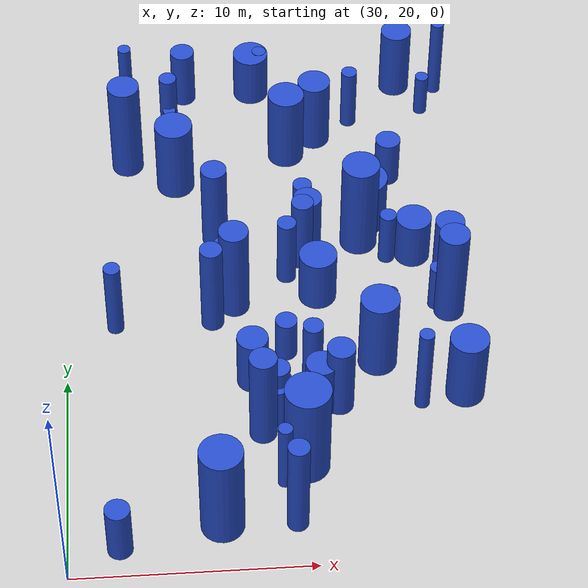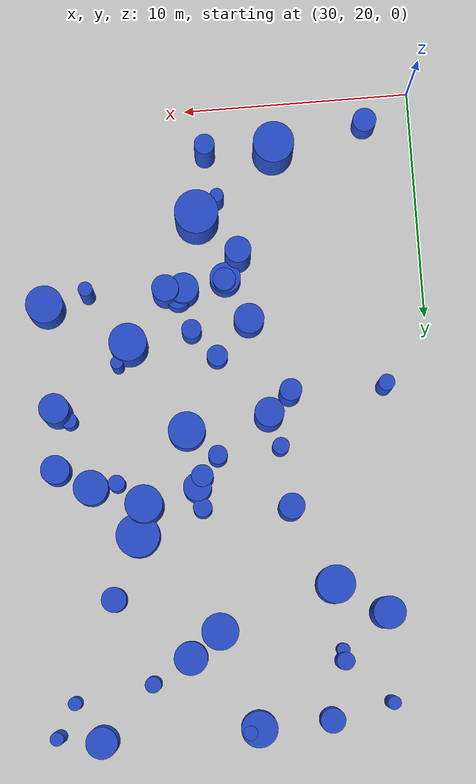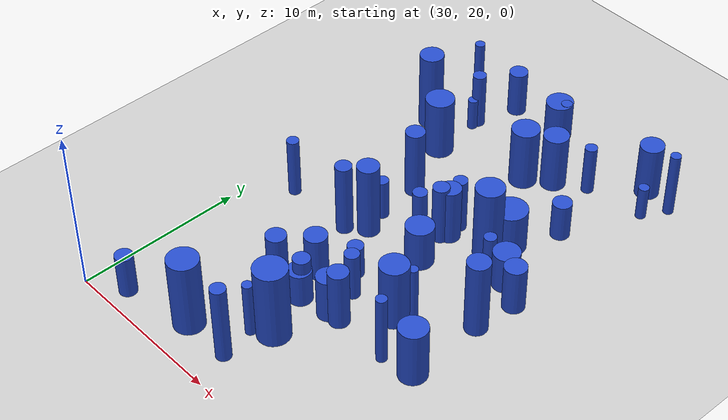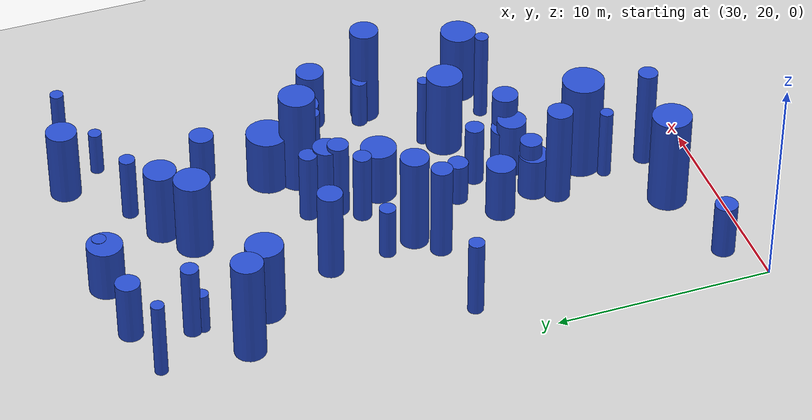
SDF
<sdf version="1.6">
 <world name="default">
  <model name="ground_plane">
   <static>1</static>
   <link name="link">
    <collision name="collision">
     <geometry><plane><normal>0 0 1</normal><size>100 100</size></plane></geometry>
     <surface><friction><ode><mu>100</mu><mu2>50</mu2></ode></friction></surface>
    </collision>
    <visual name="visual">
     <cast_shadows>0</cast_shadows>
     <geometry><plane><normal>0 0 1</normal><size>100 100</size></plane></geometry>
     <material>
      <script><uri>file://media/materials/scripts/gazebo.material</uri><name>Gazebo/Grey</name></script>
     </material>
    </visual>
   </link>
  </model>
  <model name="1">
   <static>0</static>
   <link name="link">
    <inertial>
     <mass>2</mass>
     <inertia><ixx>1.29937</ixx><ixy>0</ixy><ixz>0</ixz><iyy>1.29937</iyy><iyz>0</iyz><izz>0.270526</izz></inertia>
    </inertial>
    <collision name="collision">
     <geometry><cylinder><length>2.64284</length><radius>0.520121</radius></cylinder></geometry>
     <surface><contact><collide_without_contact>1</collide_without_contact></contact></surface>
    </collision>
    <visual name="visual">
     <geometry><cylinder><length>2.64284</length><radius>0.520121</radius></cylinder></geometry>
     <material>
      <script><uri>file://media/materials/scripts/gazebo.material</uri><name>Gazebo/Blue</name></script>
     </material>
    </visual>
    <gravity>0</gravity>
   </link>
   <pose>32.0876 21.3109 1.32142 0 -0 0</pose>
  </model>
  <model name="5">
   <static>0</static>
   <link name="link">
    <inertial>
     <mass>2</mass>
     <inertia><ixx>1.28365</ixx><ixy>0</ixy><ixz>0</ixz><iyy>1.28365</iyy><iyz>0</iyz><izz>0.136114</izz></inertia>
    </inertial>
    <collision name="collision">
     <geometry><cylinder><length>2.70066</length><radius>0.368937</radius></cylinder></geometry>
     <surface><contact><collide_without_contact>1</collide_without_contact></contact></surface>
    </collision>
    <visual name="visual">
     <geometry><cylinder><length>2.70066</length><radius>0.368937</radius></cylinder></geometry>
     <material>
      <script><uri>file://media/materials/scripts/gazebo.material</uri><name>Gazebo/Blue</name></script>
     </material>
    </visual>
    <gravity>0</gravity>
   </link>
   <pose>44.2189 36.454 1.35033 0 -0 0</pose>
  </model>
  <model name="10">
   <static>0</static>
   <link name="link">
    <inertial>
     <mass>2</mass>
     <inertia><ixx>1.16641</ixx><ixy>0</ixy><ixz>0</ixz><iyy>1.16641</iyy><iyz>0</iyz><izz>0.142317</izz></inertia>
    </inertial>
    <collision name="collision">
     <geometry><cylinder><length>2.56349</length><radius>0.37725</radius></cylinder></geometry>
     <surface><contact><collide_without_contact>1</collide_without_contact></contact></surface>
    </collision>
    <visual name="visual">
     <geometry><cylinder><length>2.56349</length><radius>0.37725</radius></cylinder></geometry>
     <material>
      <script><uri>file://media/materials/scripts/gazebo.material</uri><name>Gazebo/Blue</name></script>
     </material>
    </visual>
    <gravity>0</gravity>
   </link>
   <pose>36.8922 35.3674 1.28175 0 -0 0</pose>
  </model>
  <model name="12">
   <static>0</static>
   <link name="link">
    <inertial>
     <mass>2</mass>
     <inertia><ixx>2.99946</ixx><ixy>0</ixy><ixz>0</ixz><iyy>2.99946</iyy><iyz>0</iyz><izz>0.69692</izz></inertia>
    </inertial>
    <collision name="collision">
     <geometry><cylinder><length>3.98823</length><radius>0.834817</radius></cylinder></geometry>
     <surface><contact><collide_without_contact>1</collide_without_contact></contact></surface>
    </collision>
    <visual name="visual">
     <geometry><cylinder><length>3.98823</length><radius>0.834817</radius></cylinder></geometry>
     <material>
      <script><uri>file://media/materials/scripts/gazebo.material</uri><name>Gazebo/Blue</name></script>
     </material>
    </visual>
    <gravity>0</gravity>
   </link>
   <pose>43.2297 30.4 1.99412 0 -0 0</pose>
  </model>
  <model name="14">
   <static>0</static>
   <link name="link">
    <inertial>
     <mass>2</mass>
     <inertia>
      <ixx>2.88721</ixx>
      <ixy>0</ixy>
      <ixz>0</ixz>
      <iyy>2.88721</iyy>
      <iyz>0</iyz>
      <izz>0.0931527</izz>
     </inertia>
    </inertial>
    <collision name="collision">
     <geometry><cylinder><length>4.12841</length><radius>0.305209</radius></cylinder></geometry>
     <surface><contact><collide_without_contact>1</collide_without_contact></contact></surface>
    </collision>
    <visual name="visual">
     <geometry><cylinder><length>4.12841</length><radius>0.305209</radius></cylinder></geometry>
     <material>
      <script><uri>file://media/materials/scripts/gazebo.material</uri><name>Gazebo/Blue</name></script>
     </material>
    </visual>
    <gravity>0</gravity>
   </link>
   <pose>47.5968 47.3639 2.06421 0 -0 0</pose>
  </model>
  <model name="17">
   <static>0</static>
   <link name="link">
    <inertial>
     <mass>2</mass>
     <inertia><ixx>2.21319</ixx><ixy>0</ixy><ixz>0</ixz><iyy>2.21319</iyy><iyz>0</iyz><izz>0.160005</izz></inertia>
    </inertial>
    <collision name="collision">
     <geometry><cylinder><length>3.57759</length><radius>0.400007</radius></cylinder></geometry>
     <surface><contact><collide_without_contact>1</collide_without_contact></contact></surface>
    </collision>
    <visual name="visual">
     <geometry><cylinder><length>3.57759</length><radius>0.400007</radius></cylinder></geometry>
     <material>
      <script><uri>file://media/materials/scripts/gazebo.material</uri><name>Gazebo/Blue</name></script>
     </material>
    </visual>
    <gravity>0</gravity>
   </link>
   <pose>34.8299 44.982 1.78879 0 -0 0</pose>
  </model>
  <model name="19">
   <static>0</static>
   <link name="link">
    <inertial>
     <mass>2</mass>
     <inertia><ixx>1.64625</ixx><ixy>0</ixy><ixz>0</ixz><iyy>1.64625</iyy><iyz>0</iyz><izz>0.417403</izz></inertia>
    </inertial>
    <collision name="collision">
     <geometry><cylinder><length>2.93689</length><radius>0.646067</radius></cylinder></geometry>
     <surface><contact><collide_without_contact>1</collide_without_contact></contact></surface>
    </collision>
    <visual name="visual">
     <geometry><cylinder><length>2.93689</length><radius>0.646067</radius></cylinder></geometry>
     <material>
      <script><uri>file://media/materials/scripts/gazebo.material</uri><name>Gazebo/Blue</name></script>
     </material>
    </visual>
    <gravity>0</gravity>
   </link>
   <pose>46.8519 35.6651 1.46844 0 -0 0</pose>
  </model>
  <model name="24">
   <static>0</static>
   <link name="link">
    <inertial>
     <mass>2</mass>
     <inertia><ixx>1.49406</ixx><ixy>0</ixy><ixz>0</ixz><iyy>1.49406</iyy><iyz>0</iyz><izz>0.447724</izz></inertia>
    </inertial>
    <collision name="collision">
     <geometry><cylinder><length>2.76065</length><radius>0.669122</radius></cylinder></geometry>
     <surface><contact><collide_without_contact>1</collide_without_contact></contact></surface>
    </collision>
    <visual name="visual">
     <geometry><cylinder><length>2.76065</length><radius>0.669122</radius></cylinder></geometry>
     <material>
      <script><uri>file://media/materials/scripts/gazebo.material</uri><name>Gazebo/Blue</name></script>
     </material>
    </visual>
    <gravity>0</gravity>
   </link>
   <pose>37.853 29.6773 1.38032 0 -0 0</pose>
  </model>
  <model name="27">
   <static>0</static>
   <link name="link">
    <inertial>
     <mass>2</mass>
     <inertia>
      <ixx>2.06442</ixx>
      <ixy>0</ixy>
      <ixz>0</ixz>
      <iyy>2.06442</iyy>
      <iyz>0</iyz>
      <izz>0.0914529</izz>
     </inertia>
    </inertial>
    <collision name="collision">
     <geometry><cylinder><length>3.48025</length><radius>0.302412</radius></cylinder></geometry>
     <surface><contact><collide_without_contact>1</collide_without_contact></contact></surface>
    </collision>
    <visual name="visual">
     <geometry><cylinder><length>3.48025</length><radius>0.302412</radius></cylinder></geometry>
     <material>
      <script><uri>file://media/materials/scripts/gazebo.material</uri><name>Gazebo/Blue</name></script>
     </material>
    </visual>
    <gravity>0</gravity>
   </link>
   <pose>38.8581 24.2263 1.74013 0 -0 0</pose>
  </model>
  <model name="29">
   <static>0</static>
   <link name="link">
    <inertial>
     <mass>2</mass>
     <inertia>
      <ixx>0.983996</ixx>
      <ixy>0</ixy>
      <ixz>0</ixz>
      <iyy>0.983996</iyy>
      <iyz>0</iyz>
      <izz>0.470048</izz>
     </inertia>
    </inertial>
    <collision name="collision">
     <geometry><cylinder><length>2.11987</length><radius>0.685601</radius></cylinder></geometry>
     <surface><contact><collide_without_contact>1</collide_without_contact></contact></surface>
    </collision>
    <visual name="visual">
     <geometry><cylinder><length>2.11987</length><radius>0.685601</radius></cylinder></geometry>
     <material>
      <script><uri>file://media/materials/scripts/gazebo.material</uri><name>Gazebo/Blue</name></script>
     </material>
    </visual>
    <gravity>0</gravity>
   </link>
   <pose>38.7542 27.7533 1.05993 0 -0 0</pose>
  </model>
  <model name="31">
   <static>0</static>
   <link name="link">
    <inertial>
     <mass>2</mass>
     <inertia><ixx>2.45644</ixx><ixy>0</ixy><ixz>0</ixz><iyy>2.45644</iyy><iyz>0</iyz><izz>0.235516</izz></inertia>
    </inertial>
    <collision name="collision">
     <geometry><cylinder><length>3.74595</length><radius>0.4853</radius></cylinder></geometry>
     <surface><contact><collide_without_contact>1</collide_without_contact></contact></surface>
    </collision>
    <visual name="visual">
     <geometry><cylinder><length>3.74595</length><radius>0.4853</radius></cylinder></geometry>
     <material>
      <script><uri>file://media/materials/scripts/gazebo.material</uri><name>Gazebo/Blue</name></script>
     </material>
    </visual>
    <gravity>0</gravity>
   </link>
   <pose>40.4344 36.4539 1.87297 0 -0 0</pose>
  </model>
  <model name="38">
   <static>0</static>
   <link name="link">
    <inertial>
     <mass>2</mass>
     <inertia><ixx>1.50603</ixx><ixy>0</ixy><ixz>0</ixz><iyy>1.50603</iyy><iyz>0</iyz><izz>0.44841</izz></inertia>
    </inertial>
    <collision name="collision">
     <geometry><cylinder><length>2.77325</length><radius>0.669635</radius></cylinder></geometry>
     <surface><contact><collide_without_contact>1</collide_without_contact></contact></surface>
    </collision>
    <visual name="visual">
     <geometry><cylinder><length>2.77325</length><radius>0.669635</radius></cylinder></geometry>
     <material>
      <script><uri>file://media/materials/scripts/gazebo.material</uri><name>Gazebo/Blue</name></script>
     </material>
    </visual>
    <gravity>0</gravity>
   </link>
   <pose>40.6277 28.1109 1.38663 0 -0 0</pose>
  </model>
  <model name="39">
   <static>0</static>
   <link name="link">
    <inertial>
     <mass>2</mass>
     <inertia><ixx>3.67581</ixx><ixy>0</ixy><ixz>0</ixz><iyy>3.67581</iyy><iyz>0</iyz><izz>0.237626</izz></inertia>
    </inertial>
    <collision name="collision">
     <geometry><cylinder><length>4.61974</length><radius>0.487469</radius></cylinder></geometry>
     <surface><contact><collide_without_contact>1</collide_without_contact></contact></surface>
    </collision>
    <visual name="visual">
     <geometry><cylinder><length>4.61974</length><radius>0.487469</radius></cylinder></geometry>
     <material>
      <script><uri>file://media/materials/scripts/gazebo.material</uri><name>Gazebo/Blue</name></script>
     </material>
    </visual>
    <gravity>0</gravity>
   </link>
   <pose>36.3072 33.0621 2.30987 0 -0 0</pose>
  </model>
  <model name="43">
   <static>0</static>
   <link name="link">
    <inertial>
     <mass>2</mass>
     <inertia><ixx>1.55938</ixx><ixy>0</ixy><ixz>0</ixz><iyy>1.55938</iyy><iyz>0</iyz><izz>0.307875</izz></inertia>
    </inertial>
    <collision name="collision">
     <geometry><cylinder><length>2.9039</length><radius>0.554865</radius></cylinder></geometry>
     <surface><contact><collide_without_contact>1</collide_without_contact></contact></surface>
    </collision>
    <visual name="visual">
     <geometry><cylinder><length>2.9039</length><radius>0.554865</radius></cylinder></geometry>
     <material>
      <script><uri>file://media/materials/scripts/gazebo.material</uri><name>Gazebo/Blue</name></script>
     </material>
    </visual>
    <gravity>0</gravity>
   </link>
   <pose>35.5678 47.5327 1.45195 0 -0 0</pose>
  </model>
  <model name="55">
   <static>0</static>
   <link name="link">
    <inertial>
     <mass>2</mass>
     <inertia><ixx>2.46445</ixx><ixy>0</ixy><ixz>0</ixz><iyy>2.46445</iyy><iyz>0</iyz><izz>0.129583</izz></inertia>
    </inertial>
    <collision name="collision">
     <geometry><cylinder><length>3.79446</length><radius>0.359977</radius></cylinder></geometry>
     <surface><contact><collide_without_contact>1</collide_without_contact></contact></surface>
    </collision>
    <visual name="visual">
     <geometry><cylinder><length>3.79446</length><radius>0.359977</radius></cylinder></geometry>
     <material>
      <script><uri>file://media/materials/scripts/gazebo.material</uri><name>Gazebo/Blue</name></script>
     </material>
    </visual>
    <gravity>0</gravity>
   </link>
   <pose>32.0939 33.0185 1.89723 0 -0 0</pose>
  </model>
  <model name="59">
   <static>0</static>
   <link name="link">
    <inertial>
     <mass>2</mass>
     <inertia><ixx>1.53536</ixx><ixy>0</ixy><ixz>0</ixz><iyy>1.53536</iyy><iyz>0</iyz><izz>0.253607</izz></inertia>
    </inertial>
    <collision name="collision">
     <geometry><cylinder><length>2.90712</length><radius>0.503594</radius></cylinder></geometry>
     <surface><contact><collide_without_contact>1</collide_without_contact></contact></surface>
    </collision>
    <visual name="visual">
     <geometry><cylinder><length>2.90712</length><radius>0.503594</radius></cylinder></geometry>
     <material>
      <script><uri>file://media/materials/scripts/gazebo.material</uri><name>Gazebo/Blue</name></script>
     </material>
    </visual>
    <gravity>0</gravity>
   </link>
   <pose>38.8057 27.8795 1.45356 0 -0 0</pose>
  </model>
  <model name="61">
   <static>0</static>
   <link name="link">
    <inertial>
     <mass>2</mass>
     <inertia><ixx>2.0788</ixx><ixy>0</ixy><ixz>0</ixz><iyy>2.0788</iyy><iyz>0</iyz><izz>0.0753611</izz></inertia>
    </inertial>
    <collision name="collision">
     <geometry><cylinder><length>3.49953</length><radius>0.27452</radius></cylinder></geometry>
     <surface><contact><collide_without_contact>1</collide_without_contact></contact></surface>
    </collision>
    <visual name="visual">
     <geometry><cylinder><length>3.49953</length><radius>0.27452</radius></cylinder></geometry>
     <material>
      <script><uri>file://media/materials/scripts/gazebo.material</uri><name>Gazebo/Blue</name></script>
     </material>
    </visual>
    <gravity>0</gravity>
   </link>
   <pose>43.7905 31.2281 1.74976 0 -0 0</pose>
  </model>
  <model name="64">
   <static>0</static>
   <link name="link">
    <inertial>
     <mass>2</mass>
     <inertia><ixx>2.07915</ixx><ixy>0</ixy><ixz>0</ixz><iyy>2.07915</iyy><iyz>0</iyz><izz>0.175917</izz></inertia>
    </inertial>
    <collision name="collision">
     <geometry><cylinder><length>3.45646</length><radius>0.419424</radius></cylinder></geometry>
     <surface><contact><collide_without_contact>1</collide_without_contact></contact></surface>
    </collision>
    <visual name="visual">
     <geometry><cylinder><length>3.45646</length><radius>0.419424</radius></cylinder></geometry>
     <material>
      <script><uri>file://media/materials/scripts/gazebo.material</uri><name>Gazebo/Blue</name></script>
     </material>
    </visual>
    <gravity>0</gravity>
   </link>
   <pose>40.5268 37.8266 1.72823 0 -0 0</pose>
  </model>
  <model name="74">
   <static>0</static>
   <link name="link">
    <inertial>
     <mass>2</mass>
     <inertia><ixx>4.13948</ixx><ixy>0</ixy><ixz>0</ixz><iyy>4.13948</iyy><iyz>0</iyz><izz>0.198706</izz></inertia>
    </inertial>
    <collision name="collision">
     <geometry><cylinder><length>4.92349</length><radius>0.445764</radius></cylinder></geometry>
     <surface><contact><collide_without_contact>1</collide_without_contact></contact></surface>
    </collision>
    <visual name="visual">
     <geometry><cylinder><length>4.92349</length><radius>0.445764</radius></cylinder></geometry>
     <material>
      <script><uri>file://media/materials/scripts/gazebo.material</uri><name>Gazebo/Blue</name></script>
     </material>
    </visual>
    <gravity>0</gravity>
   </link>
   <pose>39.2279 22.1338 2.46174 0 -0 0</pose>
  </model>
  <model name="94">
   <static>0</static>
   <link name="link">
    <inertial>
     <mass>2</mass>
     <inertia>
      <ixx>2.38254</ixx>
      <ixy>0</ixy>
      <ixz>0</ixz>
      <iyy>2.38254</iyy>
      <iyz>0</iyz>
      <izz>0.0875542</izz>
     </inertia>
    </inertial>
    <collision name="collision">
     <geometry><cylinder><length>3.74601</length><radius>0.295896</radius></cylinder></geometry>
     <surface><contact><collide_without_contact>1</collide_without_contact></contact></surface>
    </collision>
    <visual name="visual">
     <geometry><cylinder><length>3.74601</length><radius>0.295896</radius></cylinder></geometry>
     <material>
      <script><uri>file://media/materials/scripts/gazebo.material</uri><name>Gazebo/Blue</name></script>
     </material>
    </visual>
    <gravity>0</gravity>
   </link>
   <pose>32.8739 46.9525 1.87301 0 -0 0</pose>
  </model>
  <model name="96">
   <static>0</static>
   <link name="link">
    <inertial>
     <mass>2</mass>
     <inertia><ixx>2.76974</ixx><ixy>0</ixy><ixz>0</ixz><iyy>2.76974</iyy><iyz>0</iyz><izz>0.675124</izz></inertia>
    </inertial>
    <collision name="collision">
     <geometry><cylinder><length>3.82009</length><radius>0.82166</radius></cylinder></geometry>
     <surface><contact><collide_without_contact>1</collide_without_contact></contact></surface>
    </collision>
    <visual name="visual">
     <geometry><cylinder><length>3.82009</length><radius>0.82166</radius></cylinder></geometry>
     <material>
      <script><uri>file://media/materials/scripts/gazebo.material</uri><name>Gazebo/Blue</name></script>
     </material>
    </visual>
    <gravity>0</gravity>
   </link>
   <pose>40.1807 43.2774 1.91004 0 -0 0</pose>
  </model>
  <model name="98">
   <static>0</static>
   <link name="link">
    <inertial>
     <mass>2</mass>
     <inertia><ixx>1.71522</ixx><ixy>0</ixy><ixz>0</ixz><iyy>1.71522</iyy><iyz>0</iyz><izz>0.943107</izz></inertia>
    </inertial>
    <collision name="collision">
     <geometry><cylinder><length>2.73166</length><radius>0.971137</radius></cylinder></geometry>
     <surface><contact><collide_without_contact>1</collide_without_contact></contact></surface>
    </collision>
    <visual name="visual">
     <geometry><cylinder><length>2.73166</length><radius>0.971137</radius></cylinder></geometry>
     <material>
      <script><uri>file://media/materials/scripts/gazebo.material</uri><name>Gazebo/Blue</name></script>
     </material>
    </visual>
    <gravity>0</gravity>
   </link>
   <pose>43.4595 38.8044 1.36583 0 -0 0</pose>
  </model>
  <model name="107">
   <static>0</static>
   <link name="link">
    <inertial>
     <mass>2</mass>
     <inertia><ixx>3.99071</ixx><ixy>0</ixy><ixz>0</ixz><iyy>3.99071</iyy><iyz>0</iyz><izz>0.335329</izz></inertia>
    </inertial>
    <collision name="collision">
     <geometry><cylinder><length>4.78939</length><radius>0.579076</radius></cylinder></geometry>
     <surface><contact><collide_without_contact>1</collide_without_contact></contact></surface>
    </collision>
    <visual name="visual">
     <geometry><cylinder><length>4.78939</length><radius>0.579076</radius></cylinder></geometry>
     <material>
      <script><uri>file://media/materials/scripts/gazebo.material</uri><name>Gazebo/Blue</name></script>
     </material>
    </visual>
    <gravity>0</gravity>
   </link>
   <pose>38.1291 26.8125 2.3947 0 -0 0</pose>
  </model>
  <model name="109">
   <static>0</static>
   <link name="link">
    <inertial>
     <mass>2</mass>
     <inertia><ixx>1.09775</ixx><ixy>0</ixy><ixz>0</ixz><iyy>1.09775</iyy><iyz>0</iyz><izz>0.108231</izz></inertia>
    </inertial>
    <collision name="collision">
     <geometry><cylinder><length>2.50236</length><radius>0.328985</radius></cylinder></geometry>
     <surface><contact><collide_without_contact>1</collide_without_contact></contact></surface>
    </collision>
    <visual name="visual">
     <geometry><cylinder><length>2.50236</length><radius>0.328985</radius></cylinder></geometry>
     <material>
      <script><uri>file://media/materials/scripts/gazebo.material</uri><name>Gazebo/Blue</name></script>
     </material>
    </visual>
    <gravity>0</gravity>
   </link>
   <pose>39.2089 47.8125 1.25118 0 -0 0</pose>
  </model>
  <model name="110">
   <static>0</static>
   <link name="link">
    <inertial>
     <mass>2</mass>
     <inertia><ixx>0.82904</ixx><ixy>0</ixy><ixz>0</ixz><iyy>0.82904</iyy><iyz>0</iyz><izz>0.220253</izz></inertia>
    </inertial>
    <collision name="collision">
     <geometry><cylinder><length>2.07689</length><radius>0.469311</radius></cylinder></geometry>
     <surface><contact><collide_without_contact>1</collide_without_contact></contact></surface>
    </collision>
    <visual name="visual">
     <geometry><cylinder><length>2.07689</length><radius>0.469311</radius></cylinder></geometry>
     <material>
      <script><uri>file://media/materials/scripts/gazebo.material</uri><name>Gazebo/Blue</name></script>
     </material>
    </visual>
    <gravity>0</gravity>
   </link>
   <pose>39.37 31.1547 1.03845 0 -0 0</pose>
  </model>
  <model name="112">
   <static>0</static>
   <link name="link">
    <inertial>
     <mass>2</mass>
     <inertia><ixx>3.3324</ixx><ixy>0</ixy><ixz>0</ixz><iyy>3.3324</iyy><iyz>0</iyz><izz>0.327172</izz></inertia>
    </inertial>
    <collision name="collision">
     <geometry><cylinder><length>4.36038</length><radius>0.571989</radius></cylinder></geometry>
     <surface><contact><collide_without_contact>1</collide_without_contact></contact></surface>
    </collision>
    <visual name="visual">
     <geometry><cylinder><length>4.36038</length><radius>0.571989</radius></cylinder></geometry>
     <material>
      <script><uri>file://media/materials/scripts/gazebo.material</uri><name>Gazebo/Blue</name></script>
     </material>
    </visual>
    <gravity>0</gravity>
   </link>
   <pose>36.6463 38.0929 2.18019 0 -0 0</pose>
  </model>
  <model name="114">
   <static>0</static>
   <link name="link">
    <inertial>
     <mass>2</mass>
     <inertia>
      <ixx>0.804192</ixx>
      <ixy>0</ixy>
      <ixz>0</ixz>
      <iyy>0.804192</iyy>
      <iyz>0</iyz>
      <izz>0.0938016</izz>
     </inertia>
    </inertial>
    <collision name="collision">
     <geometry><cylinder><length>2.13161</length><radius>0.30627</radius></cylinder></geometry>
     <surface><contact><collide_without_contact>1</collide_without_contact></contact></surface>
    </collision>
    <visual name="visual">
     <geometry><cylinder><length>2.13161</length><radius>0.30627</radius></cylinder></geometry>
     <material>
      <script><uri>file://media/materials/scripts/gazebo.material</uri><name>Gazebo/Blue</name></script>
     </material>
    </visual>
    <gravity>0</gravity>
   </link>
   <pose>46.7886 45.9426 1.0658 0 -0 0</pose>
  </model>
  <model name="115">
   <static>0</static>
   <link name="link">
    <inertial>
     <mass>2</mass>
     <inertia><ixx>2.28306</ixx><ixy>0</ixy><ixz>0</ixz><iyy>2.28306</iyy><iyz>0</iyz><izz>0.38565</izz></inertia>
    </inertial>
    <collision name="collision">
     <geometry><cylinder><length>3.54139</length><radius>0.621007</radius></cylinder></geometry>
     <surface><contact><collide_without_contact>1</collide_without_contact></contact></surface>
    </collision>
    <visual name="visual">
     <geometry><cylinder><length>3.54139</length><radius>0.621007</radius></cylinder></geometry>
     <material>
      <script><uri>file://media/materials/scripts/gazebo.material</uri><name>Gazebo/Blue</name></script>
     </material>
    </visual>
    <gravity>0</gravity>
   </link>
   <pose>40.69 36.9177 1.77069 0 -0 0</pose>
  </model>
  <model name="120">
   <static>0</static>
   <link name="link">
    <inertial>
     <mass>2</mass>
     <inertia><ixx>2.29085</ixx><ixy>0</ixy><ixz>0</ixz><iyy>2.29085</iyy><iyz>0</iyz><izz>0.499718</izz></inertia>
    </inertial>
    <collision name="collision">
     <geometry><cylinder><length>3.49942</length><radius>0.706907</radius></cylinder></geometry>
     <surface><contact><collide_without_contact>1</collide_without_contact></contact></surface>
    </collision>
    <visual name="visual">
     <geometry><cylinder><length>3.49942</length><radius>0.706907</radius></cylinder></geometry>
     <material>
      <script><uri>file://media/materials/scripts/gazebo.material</uri><name>Gazebo/Blue</name></script>
     </material>
    </visual>
    <gravity>0</gravity>
   </link>
   <pose>45.7009 47.7071 1.74971 0 -0 0</pose>
  </model>
  <model name="127">
   <static>0</static>
   <link name="link">
    <inertial>
     <mass>2</mass>
     <inertia><ixx>1.60144</ixx><ixy>0</ixy><ixz>0</ixz><iyy>1.60144</iyy><iyz>0</iyz><izz>0.190885</izz></inertia>
    </inertial>
    <collision name="collision">
     <geometry><cylinder><length>3.006</length><radius>0.436904</radius></cylinder></geometry>
     <surface><contact><collide_without_contact>1</collide_without_contact></contact></surface>
    </collision>
    <visual name="visual">
     <geometry><cylinder><length>3.006</length><radius>0.436904</radius></cylinder></geometry>
     <material>
      <script><uri>file://media/materials/scripts/gazebo.material</uri><name>Gazebo/Blue</name></script>
     </material>
    </visual>
    <gravity>0</gravity>
   </link>
   <pose>40.4164 29.9772 1.503 0 -0 0</pose>
  </model>
  <model name="132">
   <static>0</static>
   <link name="link">
    <inertial>
     <mass>2</mass>
     <inertia><ixx>1.09269</ixx><ixy>0</ixy><ixz>0</ixz><iyy>1.09269</iyy><iyz>0</iyz><izz>0.31635</izz></inertia>
    </inertial>
    <collision name="collision">
     <geometry><cylinder><length>2.36792</length><radius>0.56245</radius></cylinder></geometry>
     <surface><contact><collide_without_contact>1</collide_without_contact></contact></surface>
    </collision>
    <visual name="visual">
     <geometry><cylinder><length>2.36792</length><radius>0.56245</radius></cylinder></geometry>
     <material>
      <script><uri>file://media/materials/scripts/gazebo.material</uri><name>Gazebo/Blue</name></script>
     </material>
    </visual>
    <gravity>0</gravity>
   </link>
   <pose>44.7317 41.5307 1.18396 0 -0 0</pose>
  </model>
  <model name="134">
   <static>0</static>
   <link name="link">
    <inertial>
     <mass>2</mass>
     <inertia><ixx>2.40545</ixx><ixy>0</ixy><ixz>0</ixz><iyy>2.40545</iyy><iyz>0</iyz><izz>0.554931</izz></inertia>
    </inertial>
    <collision name="collision">
     <geometry><cylinder><length>3.57322</length><radius>0.744937</radius></cylinder></geometry>
     <surface><contact><collide_without_contact>1</collide_without_contact></contact></surface>
    </collision>
    <visual name="visual">
     <geometry><cylinder><length>3.57322</length><radius>0.744937</radius></cylinder></geometry>
     <material>
      <script><uri>file://media/materials/scripts/gazebo.material</uri><name>Gazebo/Blue</name></script>
     </material>
    </visual>
    <gravity>0</gravity>
   </link>
   <pose>41.548 44.3428 1.78661 0 -0 0</pose>
  </model>
  <model name="135">
   <static>0</static>
   <link name="link">
    <inertial>
     <mass>2</mass>
     <inertia><ixx>3.93366</ixx><ixy>0</ixy><ixz>0</ixz><iyy>3.93366</iyy><iyz>0</iyz><izz>0.417989</izz></inertia>
    </inertial>
    <collision name="collision">
     <geometry><cylinder><length>4.72736</length><radius>0.646521</radius></cylinder></geometry>
     <surface><contact><collide_without_contact>1</collide_without_contact></contact></surface>
    </collision>
    <visual name="visual">
     <geometry><cylinder><length>4.72736</length><radius>0.646521</radius></cylinder></geometry>
     <material>
      <script><uri>file://media/materials/scripts/gazebo.material</uri><name>Gazebo/Blue</name></script>
     </material>
    </visual>
    <gravity>0</gravity>
   </link>
   <pose>37.3067 33.9645 2.36368 0 -0 0</pose>
  </model>
  <model name="140">
   <static>0</static>
   <link name="link">
    <inertial>
     <mass>2</mass>
     <inertia><ixx>1.35779</ixx><ixy>0</ixy><ixz>0</ixz><iyy>1.35779</iyy><iyz>0</iyz><izz>0.659394</izz></inertia>
    </inertial>
    <collision name="collision">
     <geometry><cylinder><length>2.48366</length><radius>0.812031</radius></cylinder></geometry>
     <surface><contact><collide_without_contact>1</collide_without_contact></contact></surface>
    </collision>
    <visual name="visual">
     <geometry><cylinder><length>2.48366</length><radius>0.812031</radius></cylinder></geometry>
     <material>
      <script><uri>file://media/materials/scripts/gazebo.material</uri><name>Gazebo/Blue</name></script>
     </material>
    </visual>
    <gravity>0</gravity>
   </link>
   <pose>38.7944 47.6769 1.24183 0 -0 0</pose>
  </model>
  <model name="143">
   <static>0</static>
   <link name="link">
    <inertial>
     <mass>2</mass>
     <inertia>
      <ixx>3.28457</ixx>
      <ixy>0</ixy>
      <ixz>0</ixz>
      <iyy>3.28457</iyy>
      <iyz>0</iyz>
      <izz>0.0998408</izz>
     </inertia>
    </inertial>
    <collision name="collision">
     <geometry><cylinder><length>4.40544</length><radius>0.315976</radius></cylinder></geometry>
     <surface><contact><collide_without_contact>1</collide_without_contact></contact></surface>
    </collision>
    <visual name="visual">
     <geometry><cylinder><length>4.40544</length><radius>0.315976</radius></cylinder></geometry>
     <material>
      <script><uri>file://media/materials/scripts/gazebo.material</uri><name>Gazebo/Blue</name></script>
     </material>
    </visual>
    <gravity>0</gravity>
   </link>
   <pose>44.8876 27.9828 2.20272 0 -0 0</pose>
  </model>
  <model name="165">
   <static>0</static>
   <link name="link">
    <inertial>
     <mass>2</mass>
     <inertia>
      <ixx>0.994153</ixx>
      <ixy>0</ixy>
      <ixz>0</ixz>
      <iyy>0.994153</iyy>
      <iyz>0</iyz>
      <izz>0.126673</izz>
     </inertia>
    </inertial>
    <collision name="collision">
     <geometry><cylinder><length>2.36324</length><radius>0.355912</radius></cylinder></geometry>
     <surface><contact><collide_without_contact>1</collide_without_contact></contact></surface>
    </collision>
    <visual name="visual">
     <geometry><cylinder><length>2.36324</length><radius>0.355912</radius></cylinder></geometry>
     <material>
      <script><uri>file://media/materials/scripts/gazebo.material</uri><name>Gazebo/Blue</name></script>
     </material>
    </visual>
    <gravity>0</gravity>
   </link>
   <pose>46.1058 33.5172 1.18162 0 -0 0</pose>
  </model>
  <model name="169">
   <static>0</static>
   <link name="link">
    <inertial>
     <mass>2</mass>
     <inertia><ixx>2.0307</ixx><ixy>0</ixy><ixz>0</ixz><iyy>2.0307</iyy><iyz>0</iyz><izz>0.177895</izz></inertia>
    </inertial>
    <collision name="collision">
     <geometry><cylinder><length>3.41328</length><radius>0.421776</radius></cylinder></geometry>
     <surface><contact><collide_without_contact>1</collide_without_contact></contact></surface>
    </collision>
    <visual name="visual">
     <geometry><cylinder><length>3.41328</length><radius>0.421776</radius></cylinder></geometry>
     <material>
      <script><uri>file://media/materials/scripts/gazebo.material</uri><name>Gazebo/Blue</name></script>
     </material>
    </visual>
    <gravity>0</gravity>
   </link>
   <pose>39.6887 35.5802 1.70664 0 -0 0</pose>
  </model>
  <model name="172">
   <static>0</static>
   <link name="link">
    <inertial>
     <mass>2</mass>
     <inertia><ixx>2.75287</ixx><ixy>0</ixy><ixz>0</ixz><iyy>2.75287</iyy><iyz>0</iyz><izz>0.722519</izz></inertia>
    </inertial>
    <collision name="collision">
     <geometry><cylinder><length>3.78809</length><radius>0.850011</radius></cylinder></geometry>
     <surface><contact><collide_without_contact>1</collide_without_contact></contact></surface>
    </collision>
    <visual name="visual">
     <geometry><cylinder><length>3.78809</length><radius>0.850011</radius></cylinder></geometry>
     <material>
      <script><uri>file://media/materials/scripts/gazebo.material</uri><name>Gazebo/Blue</name></script>
     </material>
    </visual>
    <gravity>0</gravity>
   </link>
   <pose>34.9871 41.6125 1.89405 0 -0 0</pose>
  </model>
  <model name="173">
   <static>0</static>
   <link name="link">
    <inertial>
     <mass>2</mass>
     <inertia><ixx>4.09562</ixx><ixy>0</ixy><ixz>0</ixz><iyy>4.09562</iyy><iyz>0</iyz><izz>0.435234</izz></inertia>
    </inertial>
    <collision name="collision">
     <geometry><cylinder><length>4.82369</length><radius>0.659723</radius></cylinder></geometry>
     <surface><contact><collide_without_contact>1</collide_without_contact></contact></surface>
    </collision>
    <visual name="visual">
     <geometry><cylinder><length>4.82369</length><radius>0.659723</radius></cylinder></geometry>
     <material>
      <script><uri>file://media/materials/scripts/gazebo.material</uri><name>Gazebo/Blue</name></script>
     </material>
    </visual>
    <gravity>0</gravity>
   </link>
   <pose>46.6262 33.0929 2.41185 0 -0 0</pose>
  </model>
  <model name="183">
   <static>0</static>
   <link name="link">
    <inertial>
     <mass>2</mass>
     <inertia><ixx>1.23998</ixx><ixy>0</ixy><ixz>0</ixz><iyy>1.23998</iyy><iyz>0</iyz><izz>0.606635</izz></inertia>
    </inertial>
    <collision name="collision">
     <geometry><cylinder><length>2.37065</length><radius>0.778868</radius></cylinder></geometry>
     <surface><contact><collide_without_contact>1</collide_without_contact></contact></surface>
    </collision>
    <visual name="visual">
     <geometry><cylinder><length>2.37065</length><radius>0.778868</radius></cylinder></geometry>
     <material>
      <script><uri>file://media/materials/scripts/gazebo.material</uri><name>Gazebo/Blue</name></script>
     </material>
    </visual>
    <gravity>0</gravity>
   </link>
   <pose>45.3782 36.5454 1.18533 0 -0 0</pose>
  </model>
  <model name="192">
   <static>0</static>
   <link name="link">
    <inertial>
     <mass>2</mass>
     <inertia>
      <ixx>0.952831</ixx>
      <ixy>0</ixy>
      <ixz>0</ixz>
      <iyy>0.952831</iyy>
      <iyz>0</iyz>
      <izz>0.320397</izz>
     </inertia>
    </inertial>
    <collision name="collision">
     <geometry><cylinder><length>2.18078</length><radius>0.566036</radius></cylinder></geometry>
     <surface><contact><collide_without_contact>1</collide_without_contact></contact></surface>
    </collision>
    <visual name="visual">
     <geometry><cylinder><length>2.18078</length><radius>0.566036</radius></cylinder></geometry>
     <material>
      <script><uri>file://media/materials/scripts/gazebo.material</uri><name>Gazebo/Blue</name></script>
     </material>
    </visual>
    <gravity>0</gravity>
   </link>
   <pose>40.8881 28.404 1.09039 0 -0 0</pose>
  </model>
  <model name="196">
   <static>0</static>
   <link name="link">
    <inertial>
     <mass>2</mass>
     <inertia><ixx>4.1347</ixx><ixy>0</ixy><ixz>0</ixz><iyy>4.1347</iyy><iyz>0</iyz><izz>0.806814</izz></inertia>
    </inertial>
    <collision name="collision">
     <geometry><cylinder><length>4.73157</length><radius>0.898228</radius></cylinder></geometry>
     <surface><contact><collide_without_contact>1</collide_without_contact></contact></surface>
    </collision>
    <visual name="visual">
     <geometry><cylinder><length>4.73157</length><radius>0.898228</radius></cylinder></geometry>
     <material>
      <script><uri>file://media/materials/scripts/gazebo.material</uri><name>Gazebo/Blue</name></script>
     </material>
    </visual>
    <gravity>0</gravity>
   </link>
   <pose>36.2119 22.2404 2.36579 0 -0 0</pose>
  </model>
  <model name="206">
   <static>0</static>
   <link name="link">
    <inertial>
     <mass>2</mass>
     <inertia><ixx>4.20678</ixx><ixy>0</ixy><ixz>0</ixz><iyy>4.20678</iyy><iyz>0</iyz><izz>0.687476</izz></inertia>
    </inertial>
    <collision name="collision">
     <geometry><cylinder><length>4.81438</length><radius>0.829142</radius></cylinder></geometry>
     <surface><contact><collide_without_contact>1</collide_without_contact></contact></surface>
    </collision>
    <visual name="visual">
     <geometry><cylinder><length>4.81438</length><radius>0.829142</radius></cylinder></geometry>
     <material>
      <script><uri>file://media/materials/scripts/gazebo.material</uri><name>Gazebo/Blue</name></script>
     </material>
    </visual>
    <gravity>0</gravity>
   </link>
   <pose>43.0562 37.5033 2.40719 0 -0 0</pose>
  </model>
  <model name="208">
   <static>0</static>
   <link name="link">
    <inertial>
     <mass>2</mass>
     <inertia><ixx>1.47433</ixx><ixy>0</ixy><ixz>0</ixz><iyy>1.47433</iyy><iyz>0</iyz><izz>0.681332</izz></inertia>
    </inertial>
    <collision name="collision">
     <geometry><cylinder><length>2.60806</length><radius>0.825429</radius></cylinder></geometry>
     <surface><contact><collide_without_contact>1</collide_without_contact></contact></surface>
    </collision>
    <visual name="visual">
     <geometry><cylinder><length>2.60806</length><radius>0.825429</radius></cylinder></geometry>
     <material>
      <script><uri>file://media/materials/scripts/gazebo.material</uri><name>Gazebo/Blue</name></script>
     </material>
    </visual>
    <gravity>0</gravity>
   </link>
   <pose>40.9695 34.3669 1.30403 0 -0 0</pose>
  </model>
  <model name="209">
   <static>0</static>
   <link name="link">
    <inertial>
     <mass>2</mass>
     <inertia><ixx>0.71511</ixx><ixy>0</ixy><ixz>0</ixz><iyy>0.71511</iyy><iyz>0</iyz><izz>0.086054</izz></inertia>
    </inertial>
    <collision name="collision">
     <geometry><cylinder><length>2.00811</length><radius>0.29335</radius></cylinder></geometry>
     <surface><contact><collide_without_contact>1</collide_without_contact></contact></surface>
    </collision>
    <visual name="visual">
     <geometry><cylinder><length>2.00811</length><radius>0.29335</radius></cylinder></geometry>
     <material>
      <script><uri>file://media/materials/scripts/gazebo.material</uri><name>Gazebo/Blue</name></script>
     </material>
    </visual>
    <gravity>0</gravity>
   </link>
   <pose>34.8444 44.496 1.00405 0 -0 0</pose>
  </model>
  <model name="214">
   <static>0</static>
   <link name="link">
    <inertial>
     <mass>2</mass>
     <inertia><ixx>4.34058</ixx><ixy>0</ixy><ixz>0</ixz><iyy>4.34058</iyy><iyz>0</iyz><izz>0.920696</izz></inertia>
    </inertial>
    <collision name="collision">
     <geometry><cylinder><length>4.82508</length><radius>0.959529</radius></cylinder></geometry>
     <surface><contact><collide_without_contact>1</collide_without_contact></contact></surface>
    </collision>
    <visual name="visual">
     <geometry><cylinder><length>4.82508</length><radius>0.959529</radius></cylinder></geometry>
     <material>
      <script><uri>file://media/materials/scripts/gazebo.material</uri><name>Gazebo/Blue</name></script>
     </material>
    </visual>
    <gravity>0</gravity>
   </link>
   <pose>39.8046 25.0265 2.41254 0 -0 0</pose>
  </model>
  <model name="217">
   <static>0</static>
   <link name="link">
    <inertial>
     <mass>2</mass>
     <inertia><ixx>4.38609</ixx><ixy>0</ixy><ixz>0</ixz><iyy>4.38609</iyy><iyz>0</iyz><izz>0.511184</izz></inertia>
    </inertial>
    <collision name="collision">
     <geometry><cylinder><length>4.97825</length><radius>0.714971</radius></cylinder></geometry>
     <surface><contact><collide_without_contact>1</collide_without_contact></contact></surface>
    </collision>
    <visual name="visual">
     <geometry><cylinder><length>4.97825</length><radius>0.714971</radius></cylinder></geometry>
     <material>
      <script><uri>file://media/materials/scripts/gazebo.material</uri><name>Gazebo/Blue</name></script>
     </material>
    </visual>
    <gravity>0</gravity>
   </link>
   <pose>32.816 43.0186 2.48913 0 -0 0</pose>
  </model>
  <model name="218">
   <static>0</static>
   <link name="link">
    <inertial>
     <mass>2</mass>
     <inertia><ixx>1.70712</ixx><ixy>0</ixy><ixz>0</ixz><iyy>1.70712</iyy><iyz>0</iyz><izz>0.130764</izz></inertia>
    </inertial>
    <collision name="collision">
     <geometry><cylinder><length>3.13854</length><radius>0.361613</radius></cylinder></geometry>
     <surface><contact><collide_without_contact>1</collide_without_contact></contact></surface>
    </collision>
    <visual name="visual">
     <geometry><cylinder><length>3.13854</length><radius>0.361613</radius></cylinder></geometry>
     <material>
      <script><uri>file://media/materials/scripts/gazebo.material</uri><name>Gazebo/Blue</name></script>
     </material>
    </visual>
    <gravity>0</gravity>
   </link>
   <pose>43.2841 45.3669 1.56927 0 -0 0</pose>
  </model>
  <model name="245">
   <static>0</static>
   <link name="link">
    <inertial>
     <mass>2</mass>
     <inertia><ixx>2.39322</ixx><ixy>0</ixy><ixz>0</ixz><iyy>2.39322</iyy><iyz>0</iyz><izz>0.353974</izz></inertia>
    </inertial>
    <collision name="collision">
     <geometry><cylinder><length>3.64656</length><radius>0.594957</radius></cylinder></geometry>
     <surface><contact><collide_without_contact>1</collide_without_contact></contact></surface>
    </collision>
    <visual name="visual">
     <geometry><cylinder><length>3.64656</length><radius>0.594957</radius></cylinder></geometry>
     <material>
      <script><uri>file://media/materials/scripts/gazebo.material</uri><name>Gazebo/Blue</name></script>
     </material>
    </visual>
    <gravity>0</gravity>
   </link>
   <pose>41.4235 28.1396 1.82328 0 -0 0</pose>
  </model>
  <model name="249">
   <static>0</static>
   <link name="link">
    <inertial>
     <mass>2</mass>
     <inertia><ixx>2.36358</ixx><ixy>0</ixy><ixz>0</ixz><iyy>2.36358</iyy><iyz>0</iyz><izz>0.677552</izz></inertia>
    </inertial>
    <collision name="collision">
     <geometry><cylinder><length>3.48552</length><radius>0.823135</radius></cylinder></geometry>
     <surface><contact><collide_without_contact>1</collide_without_contact></contact></surface>
    </collision>
    <visual name="visual">
     <geometry><cylinder><length>3.48552</length><radius>0.823135</radius></cylinder></geometry>
     <material>
      <script><uri>file://media/materials/scripts/gazebo.material</uri><name>Gazebo/Blue</name></script>
     </material>
    </visual>
    <gravity>0</gravity>
   </link>
   <pose>46.7576 28.4282 1.74276 0 -0 0</pose>
  </model>
 </world>
</sdf>
